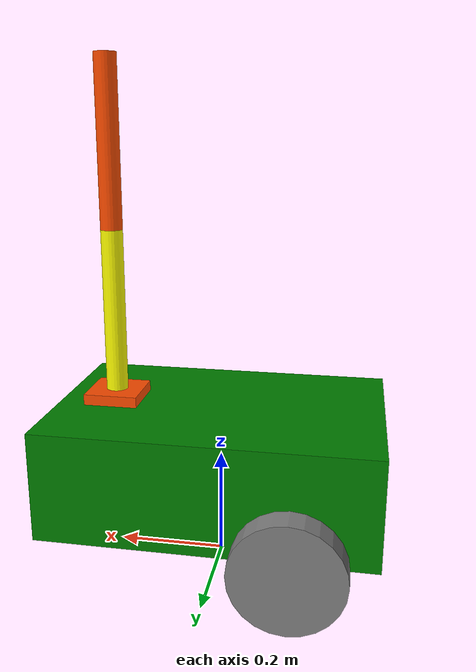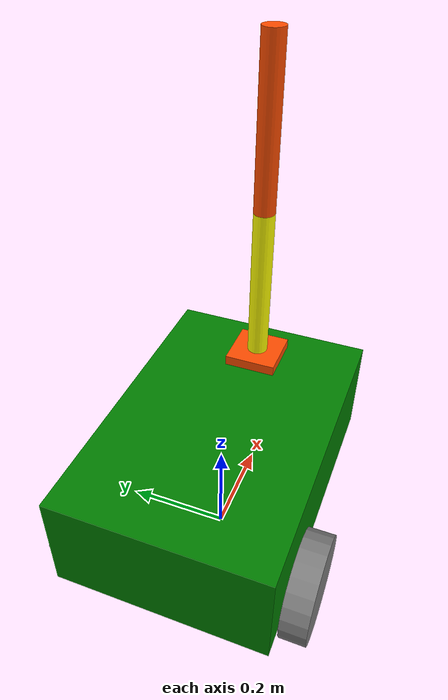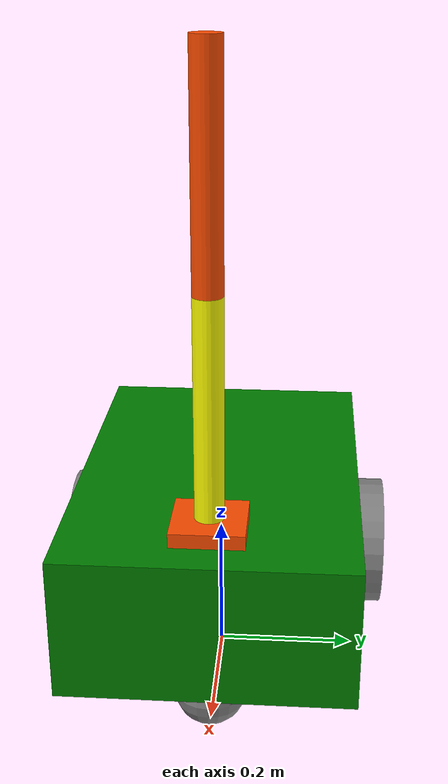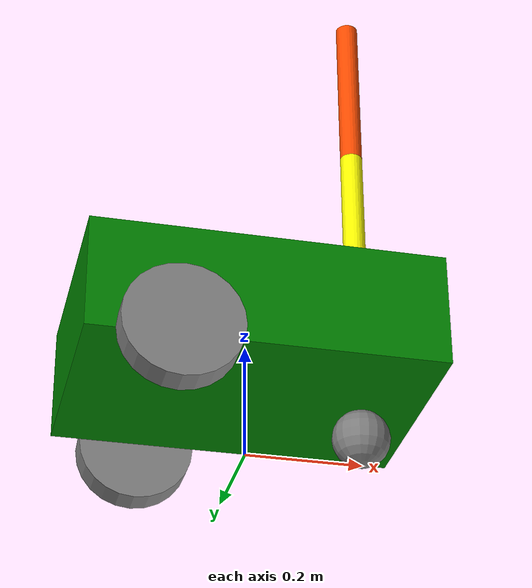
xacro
<?xml version="1.0"?>
<robot name="mobile_base_with_arm" xmlns:xacro="http://www.ros.org/wiki/xacro">

    <xacro:include filename="common_properties.xacro"/>
    <xacro:include filename="robot_parts/combined_robot.xacro"/>
    <xacro:include filename="robot_parts/mobile_base_gazebo.xacro"/>
    <xacro:include filename="robot_parts/simple_arm_gazebo.xacro"/>

</robot>

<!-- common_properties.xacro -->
<robot xmlns:xacro="http://www.ros.org/wiki/xacro">

    <material name="green">
        <color rgba="0 0.5 0 1"/>
    </material>
    <material name="blue">
        <color rgba="0 0 0.5 1"/>
    </material>
    <material name="grey">
        <color rgba="0.5 0.5 0.5 1"/>
    </material>
    <material name="orange">
        <color rgba="1 0.3 0 1"/>
    </material>
    <material name="yellow">
        <color rgba="1 1 0 1"/>
    </material>

    <xacro:macro name="inertia_box" params="m l w h xyz rpy">
        <inertial>
            <origin xyz="${xyz}" rpy="${rpy}"/>
            <mass value="${m}" />
            <inertia ixx="${(1.0/12.0) * m * (h*h + l*l)}" ixy="0" ixz="0"
                iyy="${(1.0/12.0) * m * (w*w + l*l)}" iyz="0" izz="${(1.0/12.0) * m * (w*w + h*h)}"/>
        </inertial>
    </xacro:macro>

    <xacro:macro name="inertia_cylinder" params="m r h xyz rpy">
        <inertial>
            <origin xyz="${xyz}" rpy="${rpy}"/>
            <mass value="${m}" />
            <inertia ixx="${(1.0/12.0) * m * ((3*r*r) + h*h)}" ixy="0" ixz="0"
                iyy="${(1.0/12.0) * m * (3*r*r + h*h)}" iyz="0" izz="${(1.0/2.0) * m * (r*r)}"/>
        </inertial>
    </xacro:macro>

    <xacro:macro name="inertia_sphere" params="m r xyz rpy">
        <inertial>
            <origin xyz="${xyz}" rpy="${rpy}"/>
            <mass value="${m}" />
            <inertia ixx="${(2/5.0) * m * (r*r)}" ixy="0" ixz="0"
                iyy="${(2/5.0) * m * (r*r)}" iyz="0" izz="${(2/5.0) * m * (r*r)}"/>
        </inertial>
    </xacro:macro>

</robot>

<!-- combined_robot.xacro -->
<robot xmlns:xacro="http://www.ros.org/wiki/xacro">

    <xacro:include filename="mobile_base.xacro"/>
    <xacro:include filename="simple_arm.xacro"/>

    <!-- Link arm to the mobile base -->
    <joint name="mobile_base_arm_base_joint"
        type="fixed">
        <parent link="base_link"/>
        <child link="arm_base_link"/>
        <origin xyz="${base_length / 3.0} 0 ${base_height}"
            rpy="0 0 0"/>
    </joint>
</robot>

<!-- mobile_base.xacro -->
<robot xmlns:xacro="http://www.ros.org/wiki/xacro">

    <xacro:property name="base_length"
        value="0.6"/>
    <xacro:property name="base_width"
        value="0.4"/>
    <xacro:property name="base_height"
        value="0.2"/>
    <xacro:property name="base_mass"
        value="5.0"/>

    <xacro:property name="wheel_width"
        value="0.05" />
    <xacro:property name="wheel_radius"
        value="0.1" />
    <xacro:property name="wheel_mass"
        value="1.0"/>

    <xacro:property name="caster_radius"
        value="${wheel_radius / 2.0}" />
    <xacro:property name="caster_mass"
        value="0.5"/>

    <link name="base_footprint"/>

    <link name="base_link">
        <visual>
            <geometry>
                <box size="${base_length} ${base_width} ${base_height}"/>
            </geometry>
            <origin xyz="0 0 ${base_height / 2.0}"
                rpy="0 0 0"/>
            <material name="green"/>
        </visual>
        <collision>
            <geometry>
                <box size="${base_length} ${base_width} ${base_height}"/>
            </geometry>
            <origin xyz="0 0 ${base_height / 2.0}"
                rpy="0 0 0"/>
        </collision>
        <xacro:inertia_box m="${base_mass}"
            l="${base_length}"
            w="${base_width}"
            h="${base_height}"
            xyz="0 0 ${base_height / 2.0}"
            rpy="0 0 0"/>
    </link>

    <xacro:macro name="wheel_link"
        params="prefix">
        <link name="${prefix}_wheel_link">
            <visual>
                <geometry>
                    <cylinder radius="${wheel_radius}"
                        length="${wheel_width}"/>
                </geometry>
                <origin xyz="0 0 0"
                    rpy="${pi / 2.0} 0 0"/>
                <material name="grey"/>
            </visual>
            <collision>
                <geometry>
                    <cylinder radius="${wheel_radius}"
                        length="${wheel_width}"/>
                </geometry>
                <origin xyz="0 0 0"
                    rpy="${pi / 2.0} 0 0"/>
            </collision>
            <xacro:inertia_cylinder m="${wheel_mass}"
                r="${wheel_radius}"
                h="${wheel_width}"
                xyz="0 0 0"
                rpy="${pi / 2.0} 0 0"/>
        </link>
    </xacro:macro>

    <xacro:wheel_link prefix="left"/>
    <xacro:wheel_link prefix="right"/>

    <link name="caster_wheel_link">
        <visual>
            <geometry>
                <sphere radius="${caster_radius}"/>
            </geometry>
            <origin xyz="0 0 ${- caster_radius / 2.0}"
                rpy="0 0 0"/>
            <material name="grey"/>
        </visual>
        <collision>
            <geometry>
                <sphere radius="${caster_radius}"/>
            </geometry>
            <origin xyz="0 0 ${- caster_radius / 2.0}"
                rpy="0 0 0"/>
        </collision>
        <xacro:inertia_sphere m="${caster_mass}"
            r="${caster_radius}"
            xyz="0 0 ${- caster_radius / 2.0}"
            rpy="0 0 0"/>
    </link>

    <joint name="base_footprint_joint"
        type="fixed">
        <parent link="base_footprint" />
        <child link="base_link"/>
        <origin xyz="0 0 ${wheel_radius}"
            rpy="0 0 0"/>
    </joint>

    <!-- Provide side as -1 or 1 depending on left or right -->
    <xacro:macro name="wheel_joint"
        params="prefix side">
        <joint name="base_${prefix}_wheel_joint"
            type="continuous">
            <parent link="base_link"/>
            <child link="${prefix}_wheel_link" />
            <origin xyz="${-base_length / 4.0} ${side * (base_width / 2.0 + wheel_width / 2.0)} 0"
                rpy="0 0 0"/>
            <axis xyz="0 1 0" />
        </joint>
    </xacro:macro>

    <xacro:wheel_joint prefix="left"
        side="1.0"/>
    <xacro:wheel_joint prefix="right"
        side="-1.0"/>

    <joint name="base_caster_wheel_joint"
        type="fixed">
        <parent link="base_link"/>
        <child link="caster_wheel_link" />
        <origin xyz="${base_length / 3.0} 0 ${-caster_radius / 2.0}"
            rpy="0 0 0"/>
    </joint>

</robot>

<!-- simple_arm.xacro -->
<robot xmlns:xacro="http://www.ros.org/wiki/xacro">

    <xacro:property name="arm_base_length"
        value="0.1"/>
    <xacro:property name="arm_base_width"
        value="0.1"/>
    <xacro:property name="arm_base_height"
        value="0.02"/>

    <xacro:property name="forearm_radius"
        value="0.02"/>
    <xacro:property name="forearm_length"
        value="0.3"/>

    <xacro:property name="hand_radius"
        value="0.02"/>
    <xacro:property name="hand_length"
        value="0.3"/>

    <link name="arm_base_link"
        type="fixed">
        <visual>
            <geometry>
                <box size="${arm_base_length} ${arm_base_width} ${arm_base_height}"/>
            </geometry>
            <material name="orange"/>
            <origin xyz="0 0 ${arm_base_height / 2.0}"
                rpy="0 0 0"/>
        </visual>
        <collision>
            <geometry>
                <box size="${arm_base_length} ${arm_base_width} ${arm_base_height}"/>
            </geometry>
            <origin xyz="0 0 ${arm_base_height / 2.0}"
                rpy="0 0 0"/>
        </collision>
        <xacro:inertia_box m="0.5"
            l="${arm_base_length}"
            w="${arm_base_width}"
            h="${arm_base_height}"
            xyz="0 0 ${arm_base_height / 2.0}"
            rpy="0 0 0"/>
    </link>

    <link name="forearm_link">
        <visual>
            <geometry>
                <cylinder radius="${forearm_radius}"
                    length="${forearm_length}"/>
            </geometry>
            <material name="yellow"/>
            <origin xyz="0 0 ${forearm_length / 2.0}"
                rpy="0 0 0" />
        </visual>
        <collision>
            <geometry>
                <cylinder radius="${forearm_radius}"
                    length="${forearm_length}"/>
            </geometry>
            <origin xyz="0 0 ${forearm_length / 2.0}"
                rpy="0 0 0" />
        </collision>
        <xacro:inertia_cylinder m="0.3"
            r="${forearm_radius}"
            h="${forearm_length}"
            xyz="0 0 ${forearm_length / 2.0}"
            rpy="0 0 0" />
    </link>

    <link name="hand_link">
        <visual>
            <geometry>
                <cylinder radius="${hand_radius}"
                    length="${hand_length}"/>
            </geometry>
            <material name="orange"/>
            <origin xyz="0 0 ${hand_length / 2.0}"
                rpy="0 0 0" />
        </visual>
        <collision>
            <geometry>
                <cylinder radius="${hand_radius}"
                    length="${hand_length}"/>
            </geometry>
            <origin xyz="0 0 ${hand_length / 2.0}"
                rpy="0 0 0" />
        </collision>
        <xacro:inertia_cylinder m="0.3"
            r="${hand_radius}"
            h="${hand_length}"
            xyz="0 0 ${hand_length / 2.0}"
            rpy="0 0 0" />
    </link>

    <joint name="arm_base_forearm_joint"
        type="revolute">
        <parent link="arm_base_link"/>
        <child link="forearm_link"/>
        <origin xyz="0 0 ${arm_base_height}"
            rpy="0 0 0"/>
        <axis xyz="0 1 0"/>
        <limit effort="100"
            lower="0"
            upper="${pi/2.0}"
            velocity="100" />
        <dynamics friction="0.05"
            damping="0.1" />
    </joint>

    <joint name="forearm_hand_joint"
        type="revolute">
        <parent link="forearm_link"/>
        <child link="hand_link"/>
        <origin xyz="0 0 ${forearm_length}"
            rpy="0 0 0"/>
        <axis xyz="0 1 0"/>
        <limit effort="100"
            lower="0"
            upper="${pi/2.0}"
            velocity="100" />
        <dynamics friction="0.05"
            damping="0.1" />
    </joint>
</robot>
